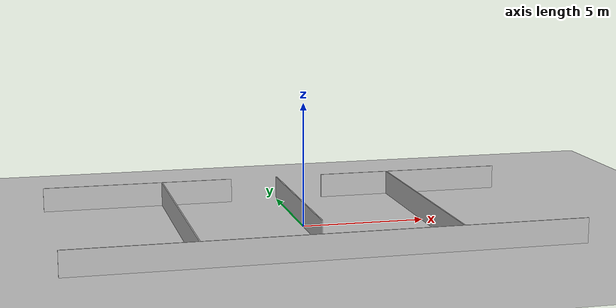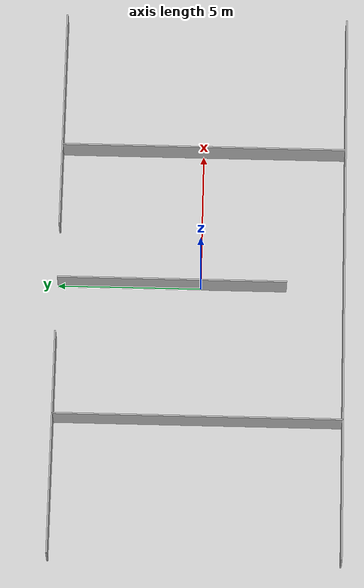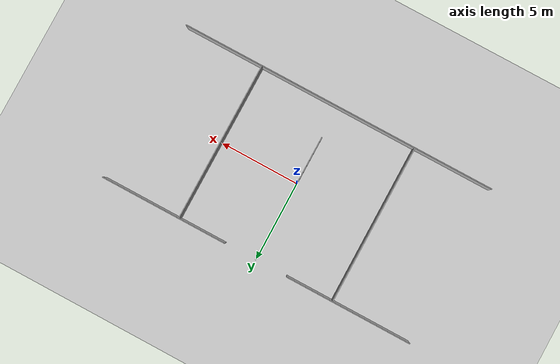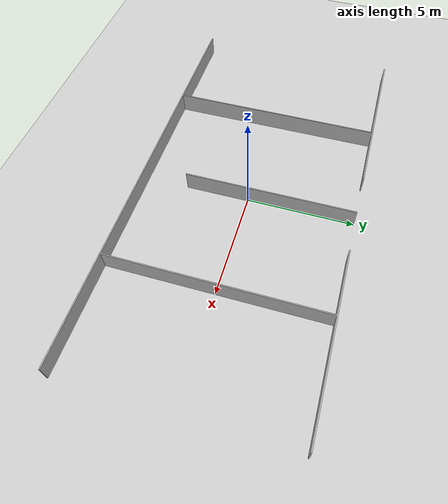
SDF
<?xml version="1.0" ?>
<sdf version="1.6">
  <world name="home_world">
    <gravity>0 0 -9.8</gravity>
    <physics type="ode">
      <max_step_size>0.001</max_step_size>
      <real_time_update_rate>1000</real_time_update_rate>
    </physics>

    <include>
      <uri>model://ground_plane</uri>
    </include>

    <model name="home_walls">
      <static>true</static>
      <link name="walls">
        <collision name="east_c"><geometry><box><size>0.05 10 1</size></box></geometry><pose>5 0 0.5 0 0 0</pose></collision>
        <visual name="east_v"><geometry><box><size>0.05 10 1</size></box></geometry><pose>5 0 0.5 0 0 0</pose></visual>
        <collision name="west_c"><geometry><box><size>0.05 10 1</size></box></geometry><pose>-5 0 0.5 0 0 0</pose></collision>
        <visual name="west_v"><geometry><box><size>0.05 10 1</size></box></geometry><pose>-5 0 0.5 0 0 0</pose></visual>
        <collision name="north_left_c"><geometry><box><size>8 0.05 1</size></box></geometry><pose>-6 5 0.5 0 0 0</pose></collision>
        <visual name="north_left_v"><geometry><box><size>8 0.05 1</size></box></geometry><pose>-6 5 0.5 0 0 0</pose></visual>
        <collision name="north_right_c"><geometry><box><size>8 0.05 1</size></box></geometry><pose>6 5 0.5 0 0 0</pose></collision>
        <visual name="north_right_v"><geometry><box><size>8 0.05 1</size></box></geometry><pose>6 5 0.5 0 0 0</pose></visual>
        <collision name="south_c"><geometry><box><size>20 0.05 1</size></box></geometry><pose>0 -5 0.5 0 0 0</pose></collision>
        <visual name="south_v"><geometry><box><size>20 0.05 1</size></box></geometry><pose>0 -5 0.5 0 0 0</pose></visual>
        <collision name="interior_c"><geometry><box><size>0.05 8 1</size></box></geometry><pose>0 1 0.5 0 0 0</pose></collision>
        <visual name="interior_v"><geometry><box><size>0.05 8 1</size></box></geometry><pose>0 1 0.5 0 0 0</pose></visual>
      </link>
    </model>

    <light type="directional" name="sun">
      <cast_shadows>true</cast_shadows>
      <pose>0 0 10 0 0 0</pose>
      <diffuse>1 1 1 1</diffuse>
      <specular>0.1 0.1 0.1 1</specular>
      <direction>-0.5 0.2 -1</direction>
    </light>
  </world>
</sdf>
